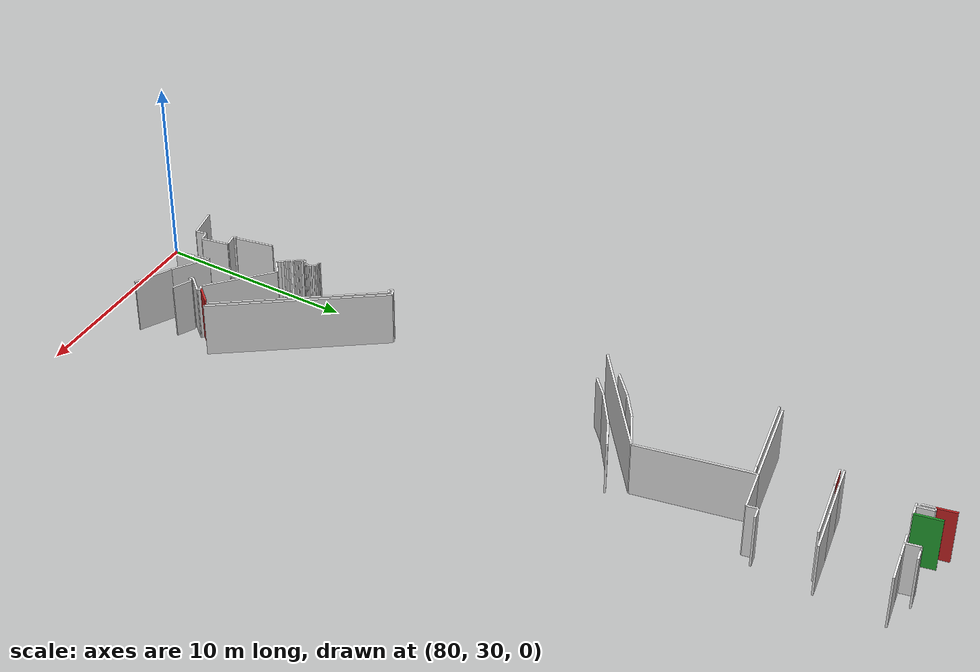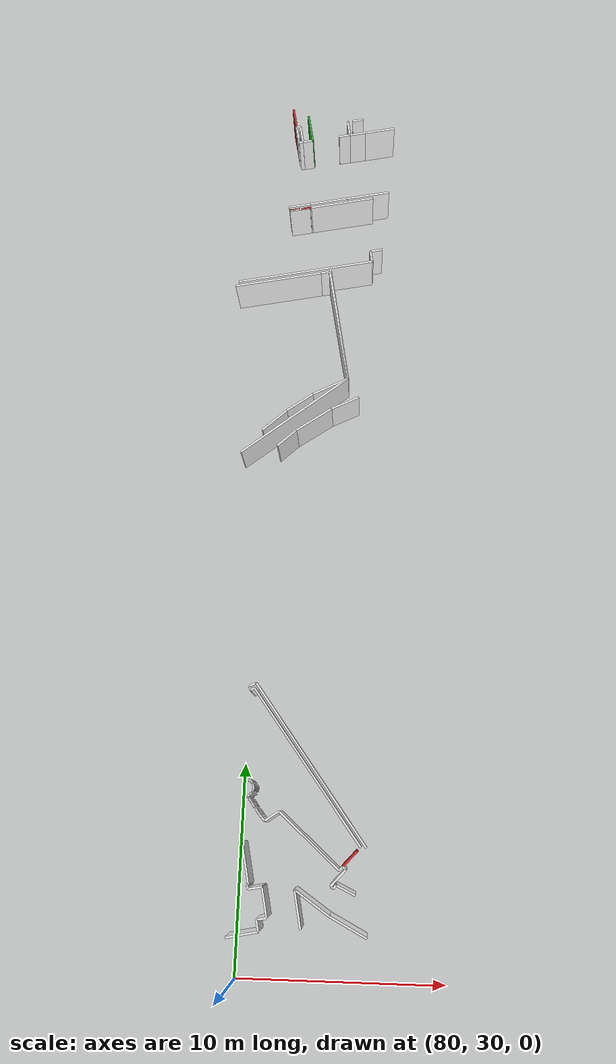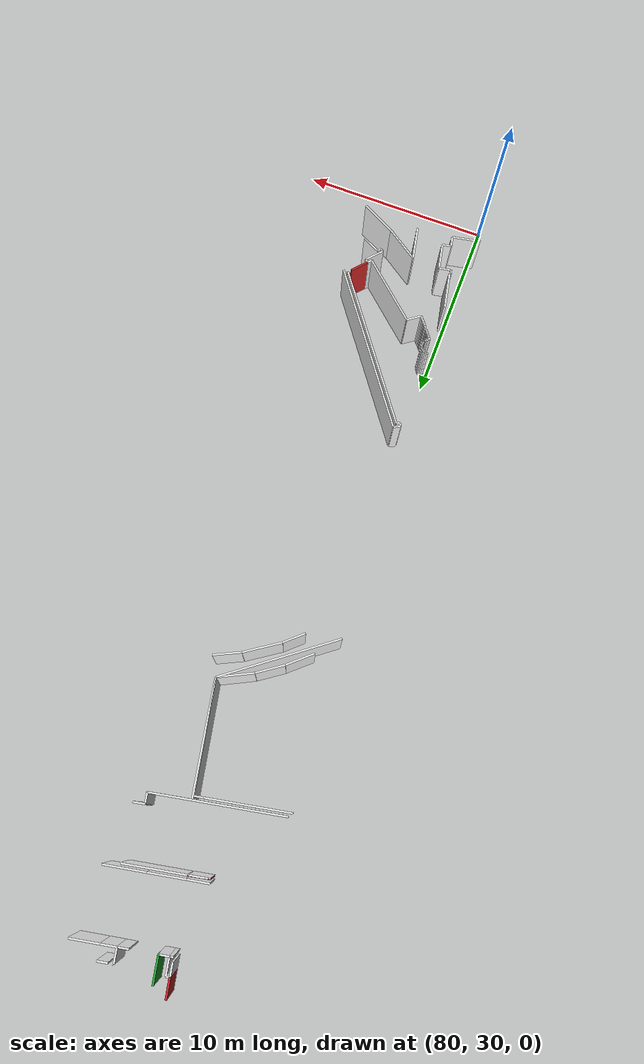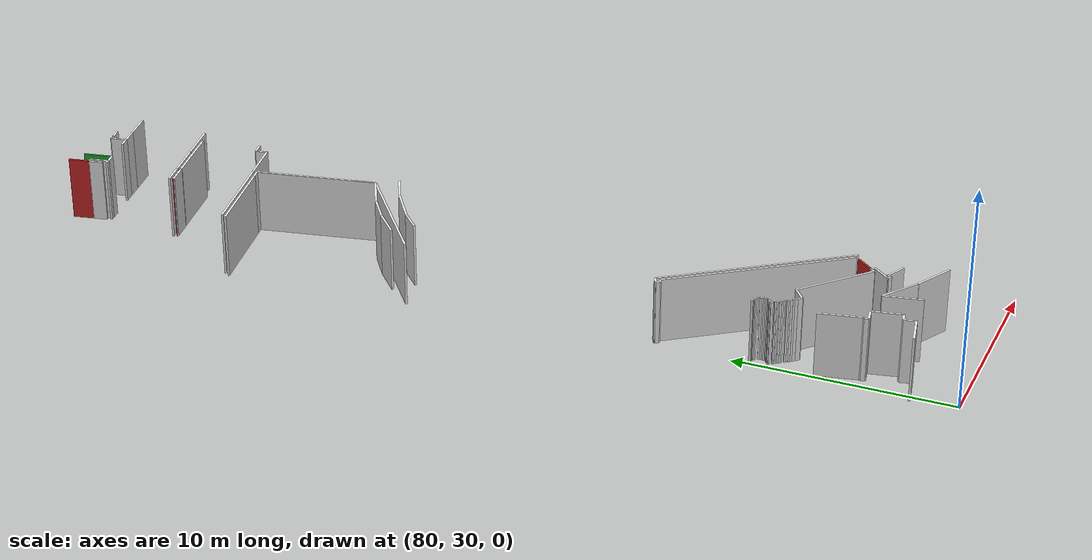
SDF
<sdf version="1.6">
 <world name="default">
  <model name="wall_81.1_72.9">
   <static>true</static>
   <pose>81.05000000001746 72.92000000015832 1.5 0 0 1.7721134351846652</pose>
   <link name="link">
    <visual name="visual">
     <geometry><box><size>1.0001999799880765 0.1 3</size></box></geometry>
     <material>
      <script><uri>file://media/materials/scripts/gazebo.material</uri><name>Gazebo/Red</name></script>
     </material>
    </visual>
    <collision name="collision"><geometry><box><size>1.0001999799880765 0.1 3</size></box></geometry></collision>
   </link>
  </model>
  <model name="wall_81.6_67.9">
   <static>true</static>
   <pose>81.55000000001746 67.88999999989755 1.5 0 0 0.2009542638673007</pose>
   <link name="link">
    <visual name="visual">
     <geometry><box><size>1.1021796587332557 0.1 3</size></box></geometry>
     <material>
      <script><uri>file://media/materials/scripts/gazebo.material</uri><name>Gazebo/Red</name></script>
     </material>
    </visual>
    <collision name="collision"><geometry><box><size>1.1021796587332557 0.1 3</size></box></geometry></collision>
   </link>
  </model>
  <model name="wall_85.3_35.8">
   <static>true</static>
   <pose>85.27999999999884 35.77000000001863 1.5 0 0 0.8424789459730314</pose>
   <link name="link">
    <visual name="visual">
     <geometry><box><size>0.9915644206490059 0.1 3</size></box></geometry>
     <material>
      <script><uri>file://media/materials/scripts/gazebo.material</uri><name>Gazebo/Red</name></script>
     </material>
    </visual>
    <collision name="collision"><geometry><box><size>0.9915644206490059 0.1 3</size></box></geometry></collision>
   </link>
  </model>
  <model name="wall_81.9_72.4">
   <static>true</static>
   <pose>81.875 72.38500000000931 1.5 0 0 1.7681918866447774</pose>
   <link name="link">
    <visual name="visual">
     <geometry><box><size>1.3767352687650285 0.1 3</size></box></geometry>
     <material>
      <script><uri>file://media/materials/scripts/gazebo.material</uri><name>Gazebo/Green</name></script>
     </material>
    </visual>
    <collision name="collision"><geometry><box><size>1.3767352687650285 0.1 3</size></box></geometry></collision>
   </link>
  </model>
  <model name="wall_81.2_72.1">
   <static>true</static>
   <pose>81.21500000002561 72.10000000009313 1.5 0 0 1.7652764429739842</pose>
   <link name="link">
    <visual name="visual">
     <geometry><box><size>0.6726812025007879 0.1 3</size></box></geometry>
     <material>
      <script><uri>file://media/materials/scripts/gazebo.material</uri><name>Gazebo/White</name></script>
     </material>
    </visual>
    <collision name="collision"><geometry><box><size>0.6726812025007879 0.1 3</size></box></geometry></collision>
   </link>
  </model>
  <model name="wall_80.9_64.3">
   <static>true</static>
   <pose>80.89999999999418 64.30999999982305 1.5 0 0 0.19486391966931105</pose>
   <link name="link">
    <visual name="visual">
     <geometry><box><size>4.647967297627117 0.1 3</size></box></geometry>
     <material>
      <script><uri>file://media/materials/scripts/gazebo.material</uri><name>Gazebo/White</name></script>
     </material>
    </visual>
    <collision name="collision"><geometry><box><size>4.647967297627117 0.1 3</size></box></geometry></collision>
   </link>
  </model>
  <model name="wall_84.2_65.0">
   <static>true</static>
   <pose>84.23999999999069 64.96999999997206 1.5 0 0 0.1955806799877843</pose>
   <link name="link">
    <visual name="visual">
     <geometry><box><size>2.1612033685678047 0.1 3</size></box></geometry>
     <material>
      <script><uri>file://media/materials/scripts/gazebo.material</uri><name>Gazebo/White</name></script>
     </material>
    </visual>
    <collision name="collision"><geometry><box><size>2.1612033685678047 0.1 3</size></box></geometry></collision>
   </link>
  </model>
  <model name="wall_85.2_65.5">
   <static>true</static>
   <pose>85.24499999999534 65.45000000018626 1.5 0 0 1.7717505904446613</pose>
   <link name="link">
    <visual name="visual">
     <geometry><box><size>0.551089829371909 0.1 3</size></box></geometry>
     <material>
      <script><uri>file://media/materials/scripts/gazebo.material</uri><name>Gazebo/White</name></script>
     </material>
    </visual>
    <collision name="collision"><geometry><box><size>0.551089829371909 0.1 3</size></box></geometry></collision>
   </link>
  </model>
  <model name="wall_85.5_65.8">
   <static>true</static>
   <pose>85.48500000001513 65.78000000002794 1.5 0 0 0.20065287673540141</pose>
   <link name="link">
    <visual name="visual">
     <geometry><box><size>0.6020797288941763 0.1 3</size></box></geometry>
     <material>
      <script><uri>file://media/materials/scripts/gazebo.material</uri><name>Gazebo/White</name></script>
     </material>
    </visual>
    <collision name="collision"><geometry><box><size>0.6020797288941763 0.1 3</size></box></geometry></collision>
   </link>
  </model>
  <model name="wall_83.7_68.3">
   <static>true</static>
   <pose>83.65499999999884 68.31000000005588 1.5 0 0 -2.9460409760625255</pose>
   <link name="link">
    <visual name="visual">
     <geometry><box><size>3.190814942895208 0.1 3</size></box></geometry>
     <material>
      <script><uri>file://media/materials/scripts/gazebo.material</uri><name>Gazebo/White</name></script>
     </material>
    </visual>
    <collision name="collision"><geometry><box><size>3.190814942895208 0.1 3</size></box></geometry></collision>
   </link>
  </model>
  <model name="wall_82.1_68.0">
   <static>true</static>
   <pose>82.06000000002678 67.98999999999069 1.5 0 0 -2.8198420989021127</pose>
   <link name="link">
    <visual name="visual">
     <geometry><box><size>0.06324555320704896 0.1 3</size></box></geometry>
     <material>
      <script><uri>file://media/materials/scripts/gazebo.material</uri><name>Gazebo/White</name></script>
     </material>
    </visual>
    <collision name="collision"><geometry><box><size>0.06324555320704896 0.1 3</size></box></geometry></collision>
   </link>
  </model>
  <model name="wall_81.5_67.9">
   <static>true</static>
   <pose>81.52000000001863 67.87999999988824 1.5 0 0 -2.9479706605614444</pose>
   <link name="link">
    <visual name="visual">
     <geometry><box><size>1.039422916869021 0.1 3</size></box></geometry>
     <material>
      <script><uri>file://media/materials/scripts/gazebo.material</uri><name>Gazebo/White</name></script>
     </material>
    </visual>
    <collision name="collision"><geometry><box><size>1.039422916869021 0.1 3</size></box></geometry></collision>
   </link>
  </model>
  <model name="wall_80.4_43.4">
   <static>true</static>
   <pose>80.37000000002445 43.43000000016764 1.5 0 0 0.4182243299392765</pose>
   <link name="link">
    <visual name="visual">
     <geometry><box><size>0.19697715605979885 0.1 3</size></box></geometry>
     <material>
      <script><uri>file://media/materials/scripts/gazebo.material</uri><name>Gazebo/White</name></script>
     </material>
    </visual>
    <collision name="collision"><geometry><box><size>0.19697715605979885 0.1 3</size></box></geometry></collision>
   </link>
  </model>
  <model name="wall_83.1_39.9">
   <static>true</static>
   <pose>83.10500000001048 39.88000000012107 1.5 0 0 -0.9358171018698879</pose>
   <link name="link">
    <visual name="visual">
     <geometry><box><size>8.918323833668834 0.1 3</size></box></geometry>
     <material>
      <script><uri>file://media/materials/scripts/gazebo.material</uri><name>Gazebo/White</name></script>
     </material>
    </visual>
    <collision name="collision"><geometry><box><size>8.918323833668834 0.1 3</size></box></geometry></collision>
   </link>
  </model>
  <model name="wall_84.9_35.3">
   <static>true</static>
   <pose>84.86500000001979 35.31000000005588 1.5 0 0 -2.3276308331322193</pose>
   <link name="link">
    <visual name="visual">
     <geometry><box><size>0.24758836783494145 0.1 3</size></box></geometry>
     <material>
      <script><uri>file://media/materials/scripts/gazebo.material</uri><name>Gazebo/White</name></script>
     </material>
    </visual>
    <collision name="collision"><geometry><box><size>0.24758836783494145 0.1 3</size></box></geometry></collision>
   </link>
  </model>
  <model name="wall_83.3_36.5">
   <static>true</static>
   <pose>83.3300000000163 36.515000000130385 1.5 0 0 2.4126008939400343</pose>
   <link name="link">
    <visual name="visual">
     <geometry><box><size>3.8882000976497033 0.1 3</size></box></geometry>
     <material>
      <script><uri>file://media/materials/scripts/gazebo.material</uri><name>Gazebo/White</name></script>
     </material>
    </visual>
    <collision name="collision"><geometry><box><size>3.8882000976497033 0.1 3</size></box></geometry></collision>
   </link>
  </model>
  <model name="wall_81.6_37.6">
   <static>true</static>
   <pose>81.55999999999767 37.574999999953434 1.5 0 0 -2.508166770423084</pose>
   <link name="link">
    <visual name="visual">
     <geometry><box><size>0.7940403013767493 0.1 3</size></box></geometry>
     <material>
      <script><uri>file://media/materials/scripts/gazebo.material</uri><name>Gazebo/White</name></script>
     </material>
    </visual>
    <collision name="collision"><geometry><box><size>0.7940403013767493 0.1 3</size></box></geometry></collision>
   </link>
  </model>
  <model name="wall_81.2_37.4">
   <static>true</static>
   <pose>81.1699999999837 37.419999999925494 1.5 0 0 2.2896263260044316</pose>
   <link name="link">
    <visual name="visual">
     <geometry><box><size>0.21260291637603487 0.1 3</size></box></geometry>
     <material>
      <script><uri>file://media/materials/scripts/gazebo.material</uri><name>Gazebo/White</name></script>
     </material>
    </visual>
    <collision name="collision"><geometry><box><size>0.21260291637603487 0.1 3</size></box></geometry></collision>
   </link>
  </model>
  <model name="wall_81.1_37.6">
   <static>true</static>
   <pose>81.05499999999302 37.55499999993481 1.5 0 0 2.2565258381046025</pose>
   <link name="link">
    <visual name="visual">
     <geometry><box><size>0.1421267039139652 0.1 3</size></box></geometry>
     <material>
      <script><uri>file://media/materials/scripts/gazebo.material</uri><name>Gazebo/White</name></script>
     </material>
    </visual>
    <collision name="collision"><geometry><box><size>0.1421267039139652 0.1 3</size></box></geometry></collision>
   </link>
  </model>
  <model name="wall_81.0_37.6">
   <static>true</static>
   <pose>80.98000000001048 37.64500000001863 1.5 0 0 2.2794225967996993</pose>
   <link name="link">
    <visual name="visual">
     <geometry><box><size>0.09219544479768974 0.1 3</size></box></geometry>
     <material>
      <script><uri>file://media/materials/scripts/gazebo.material</uri><name>Gazebo/White</name></script>
     </material>
    </visual>
    <collision name="collision"><geometry><box><size>0.09219544479768974 0.1 3</size></box></geometry></collision>
   </link>
  </model>
  <model name="wall_80.9_37.7">
   <static>true</static>
   <pose>80.9200000000128 37.71999999997206 1.5 0 0 2.2142974379164873</pose>
   <link name="link">
    <visual name="visual">
     <geometry><box><size>0.09999999968567863 0.1 3</size></box></geometry>
     <material>
      <script><uri>file://media/materials/scripts/gazebo.material</uri><name>Gazebo/White</name></script>
     </material>
    </visual>
    <collision name="collision"><geometry><box><size>0.09999999968567863 0.1 3</size></box></geometry></collision>
   </link>
  </model>
  <model name="wall_80.9_37.8">
   <static>true</static>
   <pose>80.86999999999534 37.78999999980442 1.5 0 0 2.158798930342464</pose>
   <link name="link">
    <visual name="visual">
     <geometry><box><size>0.0721110255764384 0.1 3</size></box></geometry>
     <material>
      <script><uri>file://media/materials/scripts/gazebo.material</uri><name>Gazebo/White</name></script>
     </material>
    </visual>
    <collision name="collision"><geometry><box><size>0.0721110255764384 0.1 3</size></box></geometry></collision>
   </link>
  </model>
  <model name="wall_80.8_37.9">
   <static>true</static>
   <pose>80.82499999998254 37.85499999998137 1.5 0 0 2.1910458106539252</pose>
   <link name="link">
    <visual name="visual">
     <geometry><box><size>0.08602325290617123 0.1 3</size></box></geometry>
     <material>
      <script><uri>file://media/materials/scripts/gazebo.material</uri><name>Gazebo/White</name></script>
     </material>
    </visual>
    <collision name="collision"><geometry><box><size>0.08602325290617123 0.1 3</size></box></geometry></collision>
   </link>
  </model>
  <model name="wall_80.7_38.0">
   <static>true</static>
   <pose>80.72000000000116 37.98999999999069 1.5 0 0 2.158798929670837</pose>
   <link name="link">
    <visual name="visual">
     <geometry><box><size>0.07211102554415061 0.1 3</size></box></geometry>
     <material>
      <script><uri>file://media/materials/scripts/gazebo.material</uri><name>Gazebo/White</name></script>
     </material>
    </visual>
    <collision name="collision"><geometry><box><size>0.07211102554415061 0.1 3</size></box></geometry></collision>
   </link>
  </model>
  <model name="wall_80.7_38.1">
   <static>true</static>
   <pose>80.67500000001746 38.050000000046566 1.5 0 0 2.2655346024190655</pose>
   <link name="link">
    <visual name="visual">
     <geometry><box><size>0.07810249679454152 0.1 3</size></box></geometry>
     <material>
      <script><uri>file://media/materials/scripts/gazebo.material</uri><name>Gazebo/White</name></script>
     </material>
    </visual>
    <collision name="collision"><geometry><box><size>0.07810249679454152 0.1 3</size></box></geometry></collision>
   </link>
  </model>
  <model name="wall_80.6_38.1">
   <static>true</static>
   <pose>80.625 38.11499999999069 1.5 0 0 2.191045814350898</pose>
   <link name="link">
    <visual name="visual">
     <geometry><box><size>0.08602325256107957 0.1 3</size></box></geometry>
     <material>
      <script><uri>file://media/materials/scripts/gazebo.material</uri><name>Gazebo/White</name></script>
     </material>
    </visual>
    <collision name="collision"><geometry><box><size>0.08602325256107957 0.1 3</size></box></geometry></collision>
   </link>
  </model>
  <model name="wall_80.6_38.2">
   <static>true</static>
   <pose>80.58499999999185 38.175000000046566 1.5 0 0 2.1112158241550976</pose>
   <link name="link">
    <visual name="visual">
     <geometry><box><size>0.058309519172461015 0.1 3</size></box></geometry>
     <material>
      <script><uri>file://media/materials/scripts/gazebo.material</uri><name>Gazebo/White</name></script>
     </material>
    </visual>
    <collision name="collision">
     <geometry><box><size>0.058309519172461015 0.1 3</size></box></geometry>
    </collision>
   </link>
  </model>
  <model name="wall_80.5_38.2">
   <static>true</static>
   <pose>80.5450000000128 38.22999999998137 1.5 0 0 2.265534606235961</pose>
   <link name="link">
    <visual name="visual">
     <geometry><box><size>0.07810249643681061 0.1 3</size></box></geometry>
     <material>
      <script><uri>file://media/materials/scripts/gazebo.material</uri><name>Gazebo/White</name></script>
     </material>
    </visual>
    <collision name="collision"><geometry><box><size>0.07810249643681061 0.1 3</size></box></geometry></collision>
   </link>
  </model>
  <model name="wall_80.5_38.3">
   <static>true</static>
   <pose>80.5 38.28999999980442 1.5 0 0 2.158798930342464</pose>
   <link name="link">
    <visual name="visual">
     <geometry><box><size>0.0721110255764384 0.1 3</size></box></geometry>
     <material>
      <script><uri>file://media/materials/scripts/gazebo.material</uri><name>Gazebo/White</name></script>
     </material>
    </visual>
    <collision name="collision"><geometry><box><size>0.0721110255764384 0.1 3</size></box></geometry></collision>
   </link>
  </model>
  <model name="wall_80.4_38.4">
   <static>true</static>
   <pose>80.41000000000349 38.419999999925494 1.5 0 0 2.2142974351225195</pose>
   <link name="link">
    <visual name="visual">
     <geometry><box><size>0.10000000005820765 0.1 3</size></box></geometry>
     <material>
      <script><uri>file://media/materials/scripts/gazebo.material</uri><name>Gazebo/White</name></script>
     </material>
    </visual>
    <collision name="collision"><geometry><box><size>0.10000000005820765 0.1 3</size></box></geometry></collision>
   </link>
  </model>
  <model name="wall_80.4_38.5">
   <static>true</static>
   <pose>80.4200000000128 38.47999999998137 1.5 0 0 0.4636476092918444</pose>
   <link name="link">
    <visual name="visual">
     <geometry><box><size>0.0894427191312291 0.1 3</size></box></geometry>
     <material>
      <script><uri>file://media/materials/scripts/gazebo.material</uri><name>Gazebo/White</name></script>
     </material>
    </visual>
    <collision name="collision"><geometry><box><size>0.0894427191312291 0.1 3</size></box></geometry></collision>
   </link>
  </model>
  <model name="wall_80.5_38.5">
   <static>true</static>
   <pose>80.49000000001979 38.52499999990687 1.5 0 0 0.6947382743836776</pose>
   <link name="link">
    <visual name="visual">
     <geometry><box><size>0.07810249663803426 0.1 3</size></box></geometry>
     <material>
      <script><uri>file://media/materials/scripts/gazebo.material</uri><name>Gazebo/White</name></script>
     </material>
    </visual>
    <collision name="collision"><geometry><box><size>0.07810249663803426 0.1 3</size></box></geometry></collision>
   </link>
  </model>
  <model name="wall_80.6_38.6">
   <static>true</static>
   <pose>80.55000000001746 38.579999999841675 1.5 0 0 0.7853981638825122</pose>
   <link name="link">
    <visual name="visual">
     <geometry><box><size>0.084852813780252 0.1 3</size></box></geometry>
     <material>
      <script><uri>file://media/materials/scripts/gazebo.material</uri><name>Gazebo/White</name></script>
     </material>
    </visual>
    <collision name="collision"><geometry><box><size>0.084852813780252 0.1 3</size></box></geometry></collision>
   </link>
  </model>
  <model name="wall_80.6_38.7">
   <static>true</static>
   <pose>80.63000000000466 38.71999999997206 1.5 0 0 1.3258176622984403</pose>
   <link name="link">
    <visual name="visual">
     <geometry><box><size>0.08246211213739423 0.1 3</size></box></geometry>
     <material>
      <script><uri>file://media/materials/scripts/gazebo.material</uri><name>Gazebo/White</name></script>
     </material>
    </visual>
    <collision name="collision"><geometry><box><size>0.08246211213739423 0.1 3</size></box></geometry></collision>
   </link>
  </model>
  <model name="wall_80.6_38.8">
   <static>true</static>
   <pose>80.64500000001863 38.80499999993481 1.5 0 0 1.4601391059049407</pose>
   <link name="link">
    <visual name="visual">
     <geometry><box><size>0.0905538516971156 0.1 3</size></box></geometry>
     <material>
      <script><uri>file://media/materials/scripts/gazebo.material</uri><name>Gazebo/White</name></script>
     </material>
    </visual>
    <collision name="collision"><geometry><box><size>0.0905538516971156 0.1 3</size></box></geometry></collision>
   </link>
  </model>
  <model name="wall_80.6_38.9">
   <static>true</static>
   <pose>80.64500000001863 38.890000000130385 1.5 0 0 1.695151321341658</pose>
   <link name="link">
    <visual name="visual">
     <geometry><box><size>0.08062257755807112 0.1 3</size></box></geometry>
     <material>
      <script><uri>file://media/materials/scripts/gazebo.material</uri><name>Gazebo/White</name></script>
     </material>
    </visual>
    <collision name="collision"><geometry><box><size>0.08062257755807112 0.1 3</size></box></geometry></collision>
   </link>
  </model>
  <model name="wall_80.6_39.0">
   <static>true</static>
   <pose>80.625 38.96999999997206 1.5 0 0 1.9295669989791453</pose>
   <link name="link">
    <visual name="visual">
     <geometry><box><size>0.0854400370967353 0.1 3</size></box></geometry>
     <material>
      <script><uri>file://media/materials/scripts/gazebo.material</uri><name>Gazebo/White</name></script>
     </material>
    </visual>
    <collision name="collision"><geometry><box><size>0.0854400370967353 0.1 3</size></box></geometry></collision>
   </link>
  </model>
  <model name="wall_80.5_39.1">
   <static>true</static>
   <pose>80.53500000000349 39.110000000102445 1.5 0 0 2.2655346024190655</pose>
   <link name="link">
    <visual name="visual">
     <geometry><box><size>0.07810249679454152 0.1 3</size></box></geometry>
     <material>
      <script><uri>file://media/materials/scripts/gazebo.material</uri><name>Gazebo/White</name></script>
     </material>
    </visual>
    <collision name="collision"><geometry><box><size>0.07810249679454152 0.1 3</size></box></geometry></collision>
   </link>
  </model>
  <model name="wall_80.5_39.2">
   <static>true</static>
   <pose>80.47500000000582 39.16500000003725 1.5 0 0 2.521343169416129</pose>
   <link name="link">
    <visual name="visual">
     <geometry><box><size>0.08602325256784608 0.1 3</size></box></geometry>
     <material>
      <script><uri>file://media/materials/scripts/gazebo.material</uri><name>Gazebo/White</name></script>
     </material>
    </visual>
    <collision name="collision"><geometry><box><size>0.08602325256784608 0.1 3</size></box></geometry></collision>
   </link>
  </model>
  <model name="wall_80.4_39.2">
   <static>true</static>
   <pose>80.39999999999418 39.205000000074506 1.5 0 0 2.7828219805284427</pose>
   <link name="link">
    <visual name="visual">
     <geometry><box><size>0.08544003755999831 0.1 3</size></box></geometry>
     <material>
      <script><uri>file://media/materials/scripts/gazebo.material</uri><name>Gazebo/White</name></script>
     </material>
    </visual>
    <collision name="collision"><geometry><box><size>0.08544003755999831 0.1 3</size></box></geometry></collision>
   </link>
  </model>
  <model name="wall_80.3_39.2">
   <static>true</static>
   <pose>80.32000000000698 39.22500000009313 1.5 0 0 3.0172376617295393</pose>
   <link name="link">
    <visual name="visual">
     <geometry><box><size>0.08062257741367569 0.1 3</size></box></geometry>
     <material>
      <script><uri>file://media/materials/scripts/gazebo.material</uri><name>Gazebo/White</name></script>
     </material>
    </visual>
    <collision name="collision"><geometry><box><size>0.08062257741367569 0.1 3</size></box></geometry></collision>
   </link>
  </model>
  <model name="wall_80.2_39.2">
   <static>true</static>
   <pose>80.23500000001513 39.22999999998137 1.5 0 0 3.141592653589793</pose>
   <link name="link">
    <visual name="visual">
     <geometry><box><size>0.09000000002561137 0.1 3</size></box></geometry>
     <material>
      <script><uri>file://media/materials/scripts/gazebo.material</uri><name>Gazebo/White</name></script>
     </material>
    </visual>
    <collision name="collision"><geometry><box><size>0.09000000002561137 0.1 3</size></box></geometry></collision>
   </link>
  </model>
  <model name="wall_81.4_55.8">
   <static>true</static>
   <pose>81.41499999997905 55.79000000003725 1.5 0 0 0.7444853337953005</pose>
   <link name="link">
    <visual name="visual">
     <geometry><box><size>1.2101652781804741 0.1 3</size></box></geometry>
     <material>
      <script><uri>file://media/materials/scripts/gazebo.material</uri><name>Gazebo/White</name></script>
     </material>
    </visual>
    <collision name="collision"><geometry><box><size>1.2101652781804741 0.1 3</size></box></geometry></collision>
   </link>
  </model>
  <model name="wall_82.7_56.8">
   <static>true</static>
   <pose>82.7049999999872 56.78000000002794 1.5 0 0 0.6015335773054936</pose>
   <link name="link">
    <visual name="visual">
     <geometry><box><size>2.0498048685846277 0.1 3</size></box></geometry>
     <material>
      <script><uri>file://media/materials/scripts/gazebo.material</uri><name>Gazebo/White</name></script>
     </material>
    </visual>
    <collision name="collision"><geometry><box><size>2.0498048685846277 0.1 3</size></box></geometry></collision>
   </link>
  </model>
  <model name="wall_84.2_57.7">
   <static>true</static>
   <pose>84.20999999999185 57.67999999993481 1.5 0 0 0.45145309163045305</pose>
   <link name="link">
    <visual name="visual">
     <geometry><box><size>1.4669696657345486 0.1 3</size></box></geometry>
     <material>
      <script><uri>file://media/materials/scripts/gazebo.material</uri><name>Gazebo/White</name></script>
     </material>
    </visual>
    <collision name="collision"><geometry><box><size>1.4669696657345486 0.1 3</size></box></geometry></collision>
   </link>
  </model>
  <model name="wall_85.1_34.3">
   <static>true</static>
   <pose>85.125 34.3499999998603 1.5 0 0 2.6912186013369697</pose>
   <link name="link">
    <visual name="visual">
     <geometry><box><size>1.0107917688674317 0.1 3</size></box></geometry>
     <material>
      <script><uri>file://media/materials/scripts/gazebo.material</uri><name>Gazebo/White</name></script>
     </material>
    </visual>
    <collision name="collision"><geometry><box><size>1.0107917688674317 0.1 3</size></box></geometry></collision>
   </link>
  </model>
  <model name="wall_84.6_34.5">
   <static>true</static>
   <pose>84.61499999999069 34.484999999869615 1.5 0 0 -2.145101157111568</pose>
   <link name="link">
    <visual name="visual">
     <geometry><box><size>0.20248456724302388 0.1 3</size></box></geometry>
     <material>
      <script><uri>file://media/materials/scripts/gazebo.material</uri><name>Gazebo/White</name></script>
     </material>
    </visual>
    <collision name="collision"><geometry><box><size>0.20248456724302388 0.1 3</size></box></geometry></collision>
   </link>
  </model>
  <model name="wall_84.5_34.4">
   <static>true</static>
   <pose>84.48499999998603 34.449999999953434 1.5 0 0 2.5535900496840247</pose>
   <link name="link">
    <visual name="visual">
     <geometry><box><size>0.18027756384423263 0.1 3</size></box></geometry>
     <material>
      <script><uri>file://media/materials/scripts/gazebo.material</uri><name>Gazebo/White</name></script>
     </material>
    </visual>
    <collision name="collision"><geometry><box><size>0.18027756384423263 0.1 3</size></box></geometry></collision>
   </link>
  </model>
  <model name="wall_84.8_34.9">
   <static>true</static>
   <pose>84.75499999997555 34.88500000000931 1.5 0 0 0.8401379434576747</pose>
   <link name="link">
    <visual name="visual">
     <geometry><box><size>1.0339245620604522 0.1 3</size></box></geometry>
     <material>
      <script><uri>file://media/materials/scripts/gazebo.material</uri><name>Gazebo/White</name></script>
     </material>
    </visual>
    <collision name="collision"><geometry><box><size>1.0339245620604522 0.1 3</size></box></geometry></collision>
   </link>
  </model>
  <model name="wall_85.0_35.3">
   <static>true</static>
   <pose>85.02499999999418 35.33499999996275 1.5 0 0 2.427501955287879</pose>
   <link name="link">
    <visual name="visual">
     <geometry><box><size>0.19849433231320573 0.1 3</size></box></geometry>
     <material>
      <script><uri>file://media/materials/scripts/gazebo.material</uri><name>Gazebo/White</name></script>
     </material>
    </visual>
    <collision name="collision"><geometry><box><size>0.19849433231320573 0.1 3</size></box></geometry></collision>
   </link>
  </model>
  <model name="wall_83.3_40.0">
   <static>true</static>
   <pose>83.26500000001397 40.0 1.5 0 0 2.2047677262171748</pose>
   <link name="link">
    <visual name="visual">
     <geometry><box><size>9.234419310697987 0.1 3</size></box></geometry>
     <material>
      <script><uri>file://media/materials/scripts/gazebo.material</uri><name>Gazebo/White</name></script>
     </material>
    </visual>
    <collision name="collision"><geometry><box><size>9.234419310697987 0.1 3</size></box></geometry></collision>
   </link>
  </model>
  <model name="wall_80.4_43.6">
   <static>true</static>
   <pose>80.36500000001979 43.640000000130385 1.5 0 0 -2.6901395616910224</pose>
   <link name="link">
    <visual name="visual">
     <geometry><box><size>0.3667424164975201 0.1 3</size></box></geometry>
     <material>
      <script><uri>file://media/materials/scripts/gazebo.material</uri><name>Gazebo/White</name></script>
     </material>
    </visual>
    <collision name="collision"><geometry><box><size>0.3667424164975201 0.1 3</size></box></geometry></collision>
   </link>
  </model>
  <model name="wall_80.2_43.5">
   <static>true</static>
   <pose>80.24000000001979 43.47500000009313 1.5 0 0 -1.1309537437318191</pose>
   <link name="link">
    <visual name="visual">
     <geometry><box><size>0.1878829422200848 0.1 3</size></box></geometry>
     <material>
      <script><uri>file://media/materials/scripts/gazebo.material</uri><name>Gazebo/White</name></script>
     </material>
    </visual>
    <collision name="collision"><geometry><box><size>0.1878829422200848 0.1 3</size></box></geometry></collision>
   </link>
  </model>
  <model name="wall_84.3_72.9">
   <static>true</static>
   <pose>84.29000000000815 72.92500000004657 1.5 0 0 0.2009542634638528</pose>
   <link name="link">
    <visual name="visual">
     <geometry><box><size>0.5510898292916356 0.1 3</size></box></geometry>
     <material>
      <script><uri>file://media/materials/scripts/gazebo.material</uri><name>Gazebo/White</name></script>
     </material>
    </visual>
    <collision name="collision"><geometry><box><size>0.5510898292916356 0.1 3</size></box></geometry></collision>
   </link>
  </model>
  <model name="wall_83.8_72.8">
   <static>true</static>
   <pose>83.7950000000128 72.83499999996275 1.5 0 0 -2.9441970979935492</pose>
   <link name="link">
    <visual name="visual">
     <geometry><box><size>0.050990195080677016 0.1 3</size></box></geometry>
     <material>
      <script><uri>file://media/materials/scripts/gazebo.material</uri><name>Gazebo/White</name></script>
     </material>
    </visual>
    <collision name="collision">
     <geometry><box><size>0.050990195080677016 0.1 3</size></box></geometry>
    </collision>
   </link>
  </model>
  <model name="wall_83.8_72.5">
   <static>true</static>
   <pose>83.84500000000116 72.45999999996275 1.5 0 0 -1.3708033702928581</pose>
   <link name="link">
    <visual name="visual">
     <geometry><box><size>0.7550496674526308 0.1 3</size></box></geometry>
     <material>
      <script><uri>file://media/materials/scripts/gazebo.material</uri><name>Gazebo/White</name></script>
     </material>
    </visual>
    <collision name="collision"><geometry><box><size>0.7550496674526308 0.1 3</size></box></geometry></collision>
   </link>
  </model>
  <model name="wall_83.6_72.0">
   <static>true</static>
   <pose>83.63999999998487 72.03499999991618 1.5 0 0 -2.9476335065532946</pose>
   <link name="link">
    <visual name="visual">
     <geometry><box><size>0.5707013229077953 0.1 3</size></box></geometry>
     <material>
      <script><uri>file://media/materials/scripts/gazebo.material</uri><name>Gazebo/White</name></script>
     </material>
    </visual>
    <collision name="collision"><geometry><box><size>0.5707013229077953 0.1 3</size></box></geometry></collision>
   </link>
  </model>
  <model name="wall_81.8_71.7">
   <static>true</static>
   <pose>81.76000000000931 71.65999999991618 1.5 0 0 -2.944197093560812</pose>
   <link name="link">
    <visual name="visual">
     <geometry><box><size>0.5099019513775432 0.1 3</size></box></geometry>
     <material>
      <script><uri>file://media/materials/scripts/gazebo.material</uri><name>Gazebo/White</name></script>
     </material>
    </visual>
    <collision name="collision"><geometry><box><size>0.5099019513775432 0.1 3</size></box></geometry></collision>
   </link>
  </model>
  <model name="wall_81.4_72.0">
   <static>true</static>
   <pose>81.42500000001746 72.04000000003725 1.5 0 0 1.7659547538191616</pose>
   <link name="link">
    <visual name="visual">
     <geometry><box><size>0.8766413180834757 0.1 3</size></box></geometry>
     <material>
      <script><uri>file://media/materials/scripts/gazebo.material</uri><name>Gazebo/White</name></script>
     </material>
    </visual>
    <collision name="collision"><geometry><box><size>0.8766413180834757 0.1 3</size></box></geometry></collision>
   </link>
  </model>
  <model name="wall_81.2_72.5">
   <static>true</static>
   <pose>81.24500000002445 72.45000000018626 1.5 0 0 -2.9340964269693144</pose>
   <link name="link">
    <visual name="visual">
     <geometry><box><size>0.19416487839942884 0.1 3</size></box></geometry>
     <material>
      <script><uri>file://media/materials/scripts/gazebo.material</uri><name>Gazebo/White</name></script>
     </material>
    </visual>
    <collision name="collision"><geometry><box><size>0.19416487839942884 0.1 3</size></box></geometry></collision>
   </link>
  </model>
  <model name="wall_85.0_68.8">
   <static>true</static>
   <pose>84.96499999999651 68.76500000013039 1.5 0 0 -2.9496714915424067</pose>
   <link name="link">
    <visual name="visual">
     <geometry><box><size>2.1494650497993386 0.1 3</size></box></geometry>
     <material>
      <script><uri>file://media/materials/scripts/gazebo.material</uri><name>Gazebo/White</name></script>
     </material>
    </visual>
    <collision name="collision"><geometry><box><size>2.1494650497993386 0.1 3</size></box></geometry></collision>
   </link>
  </model>
  <model name="wall_83.0_68.4">
   <static>true</static>
   <pose>82.97999999998137 68.375 1.5 0 0 -2.9452312194754318</pose>
   <link name="link">
    <visual name="visual">
     <geometry><box><size>1.8964440408382035 0.1 3</size></box></geometry>
     <material>
      <script><uri>file://media/materials/scripts/gazebo.material</uri><name>Gazebo/White</name></script>
     </material>
    </visual>
    <collision name="collision"><geometry><box><size>1.8964440408382035 0.1 3</size></box></geometry></collision>
   </link>
  </model>
  <model name="wall_81.5_68.1">
   <static>true</static>
   <pose>81.50500000000466 68.08499999996275 1.5 0 0 -2.9512641139252844</pose>
   <link name="link">
    <visual name="visual">
     <geometry><box><size>1.1100450440920377 0.1 3</size></box></geometry>
     <material>
      <script><uri>file://media/materials/scripts/gazebo.material</uri><name>Gazebo/White</name></script>
     </material>
    </visual>
    <collision name="collision"><geometry><box><size>1.1100450440920377 0.1 3</size></box></geometry></collision>
   </link>
  </model>
  <model name="wall_81.4_71.6">
   <static>true</static>
   <pose>81.41500000000815 71.59499999997206 1.5 0 0 0.15660187592798475</pose>
   <link name="link">
    <visual name="visual">
     <geometry><box><size>0.19235384058705793 0.1 3</size></box></geometry>
     <material>
      <script><uri>file://media/materials/scripts/gazebo.material</uri><name>Gazebo/White</name></script>
     </material>
    </visual>
    <collision name="collision"><geometry><box><size>0.19235384058705793 0.1 3</size></box></geometry></collision>
   </link>
  </model>
  <model name="wall_84.3_72.2">
   <static>true</static>
   <pose>84.30999999999767 72.16500000003725 1.5 0 0 0.18998828837264137</pose>
   <link name="link">
    <visual name="visual">
     <geometry><box><size>0.7942921377902116 0.1 3</size></box></geometry>
     <material>
      <script><uri>file://media/materials/scripts/gazebo.material</uri><name>Gazebo/White</name></script>
     </material>
    </visual>
    <collision name="collision"><geometry><box><size>0.7942921377902116 0.1 3</size></box></geometry></collision>
   </link>
  </model>
  <model name="wall_85.4_72.4">
   <static>true</static>
   <pose>85.44000000000233 72.38500000000931 1.5 0 0 0.19349440901301387</pose>
   <link name="link">
    <visual name="visual">
     <geometry><box><size>1.5081445553050903 0.1 3</size></box></geometry>
     <material>
      <script><uri>file://media/materials/scripts/gazebo.material</uri><name>Gazebo/White</name></script>
     </material>
    </visual>
    <collision name="collision"><geometry><box><size>1.5081445553050903 0.1 3</size></box></geometry></collision>
   </link>
  </model>
  <model name="wall_80.4_35.4">
   <static>true</static>
   <pose>80.42999999999302 35.425000000046566 1.5 0 0 -1.368474698376931</pose>
   <link name="link">
    <visual name="visual">
     <geometry><box><size>1.9906029234704192 0.1 3</size></box></geometry>
     <material>
      <script><uri>file://media/materials/scripts/gazebo.material</uri><name>Gazebo/White</name></script>
     </material>
    </visual>
    <collision name="collision"><geometry><box><size>1.9906029234704192 0.1 3</size></box></geometry></collision>
   </link>
  </model>
  <model name="wall_80.6_34.4">
   <static>true</static>
   <pose>80.60000000000582 34.44500000006519 1.5 0 0 -2.9764439722422162</pose>
   <link name="link">
    <visual name="visual">
     <geometry><box><size>0.060827625340493775 0.1 3</size></box></geometry>
     <material>
      <script><uri>file://media/materials/scripts/gazebo.material</uri><name>Gazebo/White</name></script>
     </material>
    </visual>
    <collision name="collision">
     <geometry><box><size>0.060827625340493775 0.1 3</size></box></geometry>
    </collision>
   </link>
  </model>
  <model name="wall_80.6_34.3">
   <static>true</static>
   <pose>80.59500000000116 34.34499999997206 1.5 0 0 -1.3134726118087283</pose>
   <link name="link">
    <visual name="visual">
     <geometry><box><size>0.1964688269868828 0.1 3</size></box></geometry>
     <material>
      <script><uri>file://media/materials/scripts/gazebo.material</uri><name>Gazebo/White</name></script>
     </material>
    </visual>
    <collision name="collision"><geometry><box><size>0.1964688269868828 0.1 3</size></box></geometry></collision>
   </link>
  </model>
  <model name="wall_80.9_34.3">
   <static>true</static>
   <pose>80.94000000000233 34.31000000005588 1.5 0 0 0.18534795016043343</pose>
   <link name="link">
    <visual name="visual">
     <geometry><box><size>0.6511528238783146 0.1 3</size></box></geometry>
     <material>
      <script><uri>file://media/materials/scripts/gazebo.material</uri><name>Gazebo/White</name></script>
     </material>
    </visual>
    <collision name="collision"><geometry><box><size>0.6511528238783146 0.1 3</size></box></geometry></collision>
   </link>
  </model>
  <model name="wall_81.4_33.7">
   <static>true</static>
   <pose>81.39999999999418 33.68000000016764 1.5 0 0 -1.3706152588342921</pose>
   <link name="link">
    <visual name="visual">
     <geometry><box><size>1.408119313011009 0.1 3</size></box></geometry>
     <material>
      <script><uri>file://media/materials/scripts/gazebo.material</uri><name>Gazebo/White</name></script>
     </material>
    </visual>
    <collision name="collision"><geometry><box><size>1.408119313011009 0.1 3</size></box></geometry></collision>
   </link>
  </model>
  <model name="wall_81.3_32.9">
   <static>true</static>
   <pose>81.30999999999767 32.94500000006519 1.5 0 0 -2.9483811690637367</pose>
   <link name="link">
    <visual name="visual">
     <geometry><box><size>0.4687216658345593 0.1 3</size></box></geometry>
     <material>
      <script><uri>file://media/materials/scripts/gazebo.material</uri><name>Gazebo/White</name></script>
     </material>
    </visual>
    <collision name="collision"><geometry><box><size>0.4687216658345593 0.1 3</size></box></geometry></collision>
   </link>
  </model>
  <model name="wall_81.1_32.6">
   <static>true</static>
   <pose>81.13500000000931 32.63500000000931 1.5 0 0 -1.3661545169134668</pose>
   <link name="link">
    <visual name="visual">
     <geometry><box><size>0.5412947439055198 0.1 3</size></box></geometry>
     <material>
      <script><uri>file://media/materials/scripts/gazebo.material</uri><name>Gazebo/White</name></script>
     </material>
    </visual>
    <collision name="collision"><geometry><box><size>0.5412947439055198 0.1 3</size></box></geometry></collision>
   </link>
  </model>
  <model name="wall_80.4_32.2">
   <static>true</static>
   <pose>80.44500000000698 32.21999999997206 1.5 0 0 -2.942906771693948</pose>
   <link name="link">
    <visual name="visual">
     <geometry><box><size>1.5199013126318053 0.1 3</size></box></geometry>
     <material>
      <script><uri>file://media/materials/scripts/gazebo.material</uri><name>Gazebo/White</name></script>
     </material>
    </visual>
    <collision name="collision"><geometry><box><size>1.5199013126318053 0.1 3</size></box></geometry></collision>
   </link>
  </model>
  <model name="wall_80.6_64.1">
   <static>true</static>
   <pose>80.59999999997672 64.05000000004657 1.5 0 0 0.19468553945508393</pose>
   <link name="link">
    <visual name="visual">
     <geometry><box><size>4.342027176401746 0.1 3</size></box></geometry>
     <material>
      <script><uri>file://media/materials/scripts/gazebo.material</uri><name>Gazebo/White</name></script>
     </material>
    </visual>
    <collision name="collision"><geometry><box><size>4.342027176401746 0.1 3</size></box></geometry></collision>
   </link>
  </model>
  <model name="wall_83.0_64.5">
   <static>true</static>
   <pose>82.9549999999872 64.51500000013039 1.5 0 0 0.19739555952650487</pose>
   <link name="link">
    <visual name="visual">
     <geometry><box><size>0.45891175620554253 0.1 3</size></box></geometry>
     <material>
      <script><uri>file://media/materials/scripts/gazebo.material</uri><name>Gazebo/White</name></script>
     </material>
    </visual>
    <collision name="collision"><geometry><box><size>0.45891175620554253 0.1 3</size></box></geometry></collision>
   </link>
  </model>
  <model name="wall_83.7_61.8">
   <static>true</static>
   <pose>83.73999999999069 61.75500000012107 1.5 0 0 -1.3737435848915833</pose>
   <link name="link">
    <visual name="visual">
     <geometry><box><size>5.720707998012715 0.1 3</size></box></geometry>
     <material>
      <script><uri>file://media/materials/scripts/gazebo.material</uri><name>Gazebo/White</name></script>
     </material>
    </visual>
    <collision name="collision"><geometry><box><size>5.720707998012715 0.1 3</size></box></geometry></collision>
   </link>
  </model>
  <model name="wall_83.4_58.5">
   <static>true</static>
   <pose>83.44500000000698 58.515000000130385 1.5 0 0 -2.6709521515229318</pose>
   <link name="link">
    <visual name="visual">
     <geometry><box><size>1.9185932346558128 0.1 3</size></box></geometry>
     <material>
      <script><uri>file://media/materials/scripts/gazebo.material</uri><name>Gazebo/White</name></script>
     </material>
    </visual>
    <collision name="collision"><geometry><box><size>1.9185932346558128 0.1 3</size></box></geometry></collision>
   </link>
  </model>
  <model name="wall_82.0_57.6">
   <static>true</static>
   <pose>81.96500000002561 57.63500000000931 1.5 0 0 -2.52285831789347</pose>
   <link name="link">
    <visual name="visual">
     <geometry><box><size>1.5344705928208873 0.1 3</size></box></geometry>
     <material>
      <script><uri>file://media/materials/scripts/gazebo.material</uri><name>Gazebo/White</name></script>
     </material>
    </visual>
    <collision name="collision"><geometry><box><size>1.5344705928208873 0.1 3</size></box></geometry></collision>
   </link>
  </model>
  <model name="wall_80.8_56.7">
   <static>true</static>
   <pose>80.76500000001397 56.669999999925494 1.5 0 0 -2.4063806244587402</pose>
   <link name="link">
    <visual name="visual">
     <geometry><box><size>1.5505160431711233 0.1 3</size></box></geometry>
     <material>
      <script><uri>file://media/materials/scripts/gazebo.material</uri><name>Gazebo/White</name></script>
     </material>
    </visual>
    <collision name="collision"><geometry><box><size>1.5505160431711233 0.1 3</size></box></geometry></collision>
   </link>
  </model>
  <model name="wall_82.9_33.4">
   <static>true</static>
   <pose>82.93499999999767 33.419999999925494 1.5 0 0 1.767098990916609</pose>
   <link name="link">
    <visual name="visual">
     <geometry><box><size>1.7944637079631676 0.1 3</size></box></geometry>
     <material>
      <script><uri>file://media/materials/scripts/gazebo.material</uri><name>Gazebo/White</name></script>
     </material>
    </visual>
    <collision name="collision"><geometry><box><size>1.7944637079631676 0.1 3</size></box></geometry></collision>
   </link>
  </model>
  <model name="wall_83.6_33.7">
   <static>true</static>
   <pose>83.58499999999185 33.734999999869615 1.5 0 0 -0.6004846182035232</pose>
   <link name="link">
    <visual name="visual">
     <geometry><box><size>1.9998499942826147 0.1 3</size></box></geometry>
     <material>
      <script><uri>file://media/materials/scripts/gazebo.material</uri><name>Gazebo/White</name></script>
     </material>
    </visual>
    <collision name="collision"><geometry><box><size>1.9998499942826147 0.1 3</size></box></geometry></collision>
   </link>
  </model>
  <model name="wall_85.3_32.7">
   <static>true</static>
   <pose>85.2949999999837 32.70999999996275 1.5 0 0 -0.47934138766953305</pose>
   <link name="link">
    <visual name="visual">
     <geometry><box><size>1.9948182874459637 0.1 3</size></box></geometry>
     <material>
      <script><uri>file://media/materials/scripts/gazebo.material</uri><name>Gazebo/White</name></script>
     </material>
    </visual>
    <collision name="collision"><geometry><box><size>1.9948182874459637 0.1 3</size></box></geometry></collision>
   </link>
  </model>
  <model name="wall_81.7_57.0">
   <static>true</static>
   <pose>81.74499999999534 56.97000000020489 1.5 0 0 0.6592795022457629</pose>
   <link name="link">
    <visual name="visual">
     <geometry><box><size>6.4648047147274434 0.1 3</size></box></geometry>
     <material>
      <script><uri>file://media/materials/scripts/gazebo.material</uri><name>Gazebo/White</name></script>
     </material>
    </visual>
    <collision name="collision"><geometry><box><size>6.4648047147274434 0.1 3</size></box></geometry></collision>
   </link>
  </model>
  <model name="wall_83.7_61.9">
   <static>true</static>
   <pose>83.73999999999069 61.85499999998137 1.5 0 0 1.761231442220787</pose>
   <link name="link">
    <visual name="visual">
     <geometry><box><size>5.91696712811791 0.1 3</size></box></geometry>
     <material>
      <script><uri>file://media/materials/scripts/gazebo.material</uri><name>Gazebo/White</name></script>
     </material>
    </visual>
    <collision name="collision"><geometry><box><size>5.91696712811791 0.1 3</size></box></geometry></collision>
   </link>
  </model>
 </world>
</sdf>
